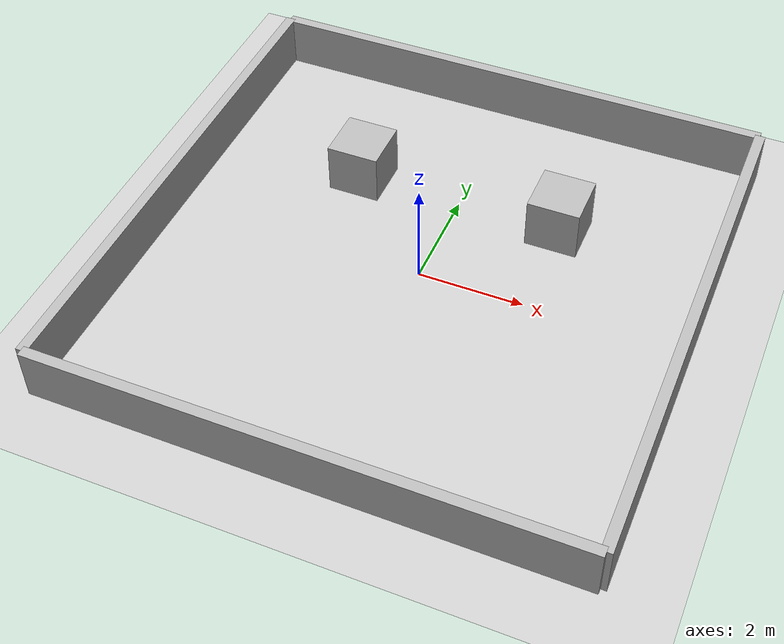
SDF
<?xml version="1.0" ?>
<sdf version="1.6">
  <world name="classroom">
    <physics name="1ms" type="ode">
      <max_step_size>0.001</max_step_size>
      <real_time_factor>1.0</real_time_factor>
    </physics>

    <include>
      <uri>model://sun</uri>
    </include>

    <include>
      <uri>model://ground_plane</uri>
    </include>

    <model name="wall_north">
      <static>true</static>
      <pose>5.0 0.0 0.5 0.0 0.0 1.5708</pose>
      <link name="link">
        <collision name="col"><geometry><box><size>10.0 0.2 1.0</size></box></geometry></collision>
        <visual name="vis"><geometry><box><size>10.0 0.2 1.0</size></box></geometry></visual>
      </link>
    </model>

    <model name="wall_south">
      <static>true</static>
      <pose>-5.0 0.0 0.5 0.0 0.0 1.5708</pose>
      <link name="link">
        <collision name="col"><geometry><box><size>10.0 0.2 1.0</size></box></geometry></collision>
        <visual name="vis"><geometry><box><size>10.0 0.2 1.0</size></box></geometry></visual>
      </link>
    </model>

    <model name="wall_east">
      <static>true</static>
      <pose>0.0 5.0 0.5 0.0 0.0 0.0</pose>
      <link name="link">
        <collision name="col"><geometry><box><size>10.0 0.2 1.0</size></box></geometry></collision>
        <visual name="vis"><geometry><box><size>10.0 0.2 1.0</size></box></geometry></visual>
      </link>
    </model>

    <model name="wall_west">
      <static>true</static>
      <pose>0.0 -5.0 0.5 0.0 0.0 0.0</pose>
      <link name="link">
        <collision name="col"><geometry><box><size>10.0 0.2 1.0</size></box></geometry></collision>
        <visual name="vis"><geometry><box><size>10.0 0.2 1.0</size></box></geometry></visual>
      </link>
    </model>

    <model name="desk1">
      <static>true</static>
      <pose>2.0 2.0 0.5 0.0 0.0 0.0</pose>
      <link name="link">
        <collision name="col"><geometry><box><size>1.0 1.0 1.0</size></box></geometry></collision>
        <visual name="vis"><geometry><box><size>1.0 1.0 1.0</size></box></geometry></visual>
      </link>
    </model>

    <model name="desk2">
      <static>true</static>
      <pose>-2.0 2.0 0.5 0.0 0.0 0.0</pose>
      <link name="link">
        <collision name="col"><geometry><box><size>1.0 1.0 1.0</size></box></geometry></collision>
        <visual name="vis"><geometry><box><size>1.0 1.0 1.0</size></box></geometry></visual>
      </link>
    </model>

  </world>
</sdf>
